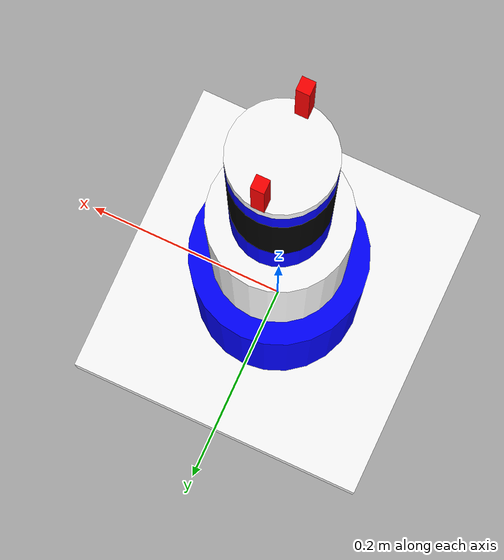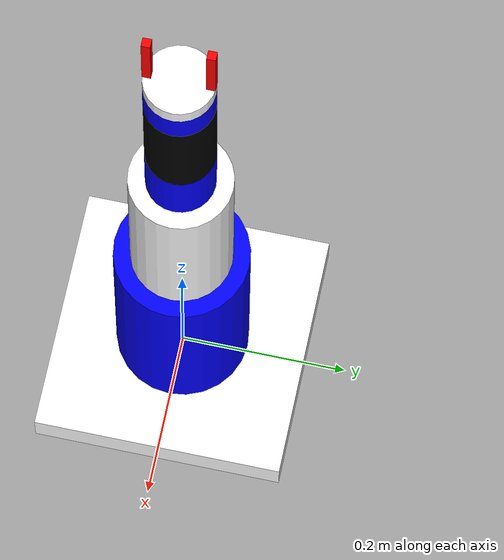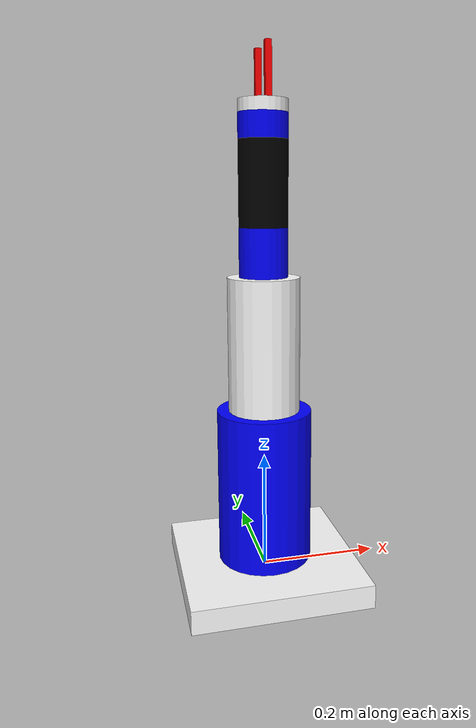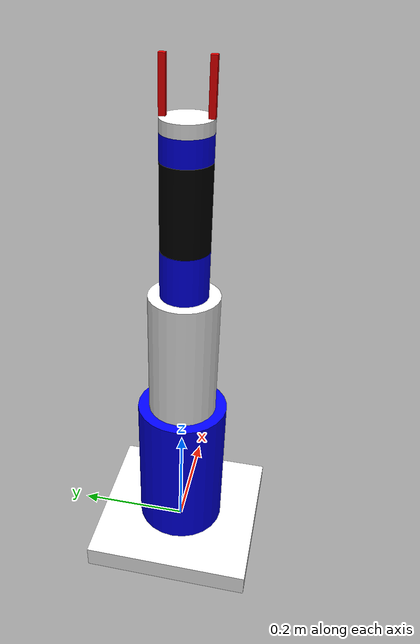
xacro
<?xml version="1.0"?>
<robot name="arm" xmlns:xacro="http://www.ros.org/wiki/xacro">
	<xacro:include filename="/home/zcb/01intelligent_storage/arm/arm.gazebo.xacro"/>
	<material name="White">
		<color rgba="1 1 1 1"/>
	</material>
	<material name="Blue">
		<color rgba="0 0 1 1"/>
	</material>
	<material name="Black">
		<color rgba="0 0 0 1"/>
	</material>
	<material name="Red">
		<color rgba="1 0 0 1"/>
	</material>

	<xacro:property name="base_link_height" value="0.04"/>
	<xacro:property name="base_link_length" value="0.3"/>
	<xacro:property name="base_link_width" value="0.3"/>

	<!-- link1-->
	<xacro:property name="link1_length" value="0.264"/>
	<xacro:property name="link1_radius" value="0.08"/>

	<!-- link2-->
	<xacro:property name="link2_length" value="0.225"/>
	<xacro:property name="link2_radius" value="0.06"/>

	<!-- link3 properties -->
	<xacro:property name="link3_radius" value="0.04"/>
	<xacro:property name="link3_length" value="0.08"/>
	<xacro:property name="link3_mass" value="2"/>

	<!-- link4 properties -->
	<xacro:property name="link4_radius" value="0.04"/>
	<xacro:property name="link4_length" value="0.137"/>
	<xacro:property name="link4_mass" value="2"/>

	<!-- link5 properties -->
	<xacro:property name="link5_radius" value="0.04"/>
	<xacro:property name="link5_length" value="0.04"/>
	<xacro:property name="link5_mass" value="1"/>

	<!-- palm properties -->
	<xacro:property name="palm_radius" value="0.04"/>
	<xacro:property name="palm_length" value="0.02"/>
	<xacro:property name="palm_mass" value="1"/>

	<!-- finger -->
	<xacro:property name="finger_length" value="0.01" />
	<xacro:property name="finger_width" value="0.01" />
	<xacro:property name="finger_height" value="0.08" />
	<xacro:property name="finger_mass" value="0.1"/>

	<!-- cylinder_inertia -->
	<xacro:macro name="cylinder1_inertia" params="mass radius length">
		<inertial>
		    <mass value="${mass}"/>
		    <inertia ixx="${mass*(3*radius*radius+length*length)/12}" ixy="0.0" ixz="0.0" iyy="${mass*(3*radius*radius+length*length)/12}" iyz="0.0" izz="${mass*radius*radius/2}"/>
		</inertial>
	</xacro:macro>
	<xacro:macro name="cylinder2_inertia" params="mass length">
		<inertial>
		    <mass value="${mass}"/>
		    <inertia ixx="${mass*length*length/3}" ixy="0.0" ixz="0.0" iyy="${mass*length*length/3}" iyz="0.0" izz="${mass*length*length/3}"/>
		</inertial>
	</xacro:macro>

	<!-- box_inertia-->
	<xacro:macro name="box_inertia" params="mass width height length">
		<inertial>
			<mass value="${mass}"/>
			<inertia ixx="${mass*(width*width+height*height)/12}" ixy="0.0" ixz="0.0" iyy="${mass*(height*height+length*length)/12}" iyz="0.0" izz="${mass*(width*width+length*length)/12}"/>
		</inertial>
	</xacro:macro>

	<!-- common link-->
	<xacro:macro name="common_link" params="name length radius material type mass">
		<link name="${name}">
			<visual>
				<geometry>
					<cylinder length="${length}" radius="${radius}"/>
				</geometry>
				<origin xyz="0 0 ${length/2}" rpy="0 0 0"/>
				<material name="${material}"/>
			</visual>

			<collision>
				<geometry>
					<cylinder length="${length}" radius="${radius}"/>
				</geometry>
				<origin xyz="0 0 ${length/2}" rpy="0 0 0"/>
			</collision>
			<xacro:if value="${type=='1'}">
				<cylinder1_inertia mass="${mass}" radius="${radius}" length="${length}"/>
			</xacro:if>
			<xacro:unless value="${type=='1'}">
				<cylinder2_inertia mass="${mass}" length="${length}"/>
			</xacro:unless>
		</link>
	</xacro:macro>

	<!-- common joint-->
	<xacro:macro name="common_joint" params="name parent child z axis lower upper">
		<joint name="${name}" type="revolute">
			<parent link="${parent}"/>
			<child link="${child}"/>
			<origin xyz ="0 0 ${z}" rpy ="0 0 0"/>
			<axis xyz="${axis}"/>
			<limit lower="${lower}" upper="${upper}" effort ="30" velocity ="3.49" />
			<dynamics damping="50" friction="1"/>
		</joint>
	</xacro:macro>

<!--/////////////////gazebo world ///////////////////-->
<link name="world"/>

<joint name="fixed" type="fixed">
    <parent link="world"/>
    <child link="base_link"/>
</joint>

	<link name="base_link">
		<visual>
			<geometry>
				<box size="${base_link_length} ${base_link_width} ${base_link_height}"/>
			</geometry>
			<origin xyz="0 0 0" rpy="0 0 0"/>
			<material name="White"/>
		</visual>

		<collision>
			<geometry>
				<box size="0.3 0.3 ${base_link_height}"/>
			</geometry>
			<origin xyz="0 0 0" rpy="0 0 0"/>
		</collision>
		<xacro:box_inertia mass="1" width="${base_link_width}" height="${base_link_height}" length="${base_link_length}"/>
	</link>

	<common_link name="link1" length="${link1_length}" radius="${link1_radius}" material="Blue" type="1" mass="1"/>
	<common_joint name="joint1" parent="base_link" child="link1" z="${base_link_height/2}" axis="0 0 1" lower="${-pi}" upper="${pi}"/>

	<common_link name="link2" length="${link2_length}" radius="${link2_radius}" material="White" type="0" mass="3"/>
	<common_joint name="joint2" parent="link1" child="link2" z="${link1_length}" axis="0 1 0" lower="${-2.00}" upper="${2.00}"/>

	<common_link name="link3" length="${link3_length}" radius="${link3_radius}" material="Blue" type="0" mass="${link3_mass}"/>
	<common_joint name="joint3" parent="link2" child="link3" z="${link2_length}" axis="0 1 0" lower="${-2.27}" upper="${2.27}"/>

	<common_link name="link4" length="${link4_length}" radius="${link4_radius}" material="Black" type="1" mass="${link4_mass}"/>
	<common_joint name="joint4" parent="link3" child="link4" z="${link3_length}" axis="0 0 1" lower="${-pi}" upper="${pi}"/>

	<common_link name="link5" length="${link5_length}" radius="${link5_radius}" material="Blue" type="0" mass="${link5_mass}"/>
	<common_joint name="joint5" parent="link4" child="link5" z="${link4_length}" axis="0 1 0" lower="${-2.87}" upper="${2.87}"/>

	<common_link name="palm" length="${palm_length}" radius="${palm_radius}" material="White" type="1" mass="${palm_mass}"/>
	<common_joint name="palm_joint" parent="link5" child="palm" z="${link5_length}" axis="0 0 1" lower="${-pi}" upper="${pi}"/>

	<link name="left_finger_link">
		<visual>
			<geometry>
				<box size="${finger_length} ${finger_width} ${finger_height}"/>
			</geometry>
			<origin xyz="0 0 ${finger_height/2}" rpy="0 0 0"/>
			<material name="Red"/>
		</visual>

		<collision>
			<geometry>
				<box size="${finger_length} ${finger_width} ${finger_height}"/>
			</geometry>
			<origin xyz="0 0 ${finger_height/2}" rpy="0 0 0"/>
		</collision>
		<xacro:box_inertia mass="${finger_mass}" width="${finger_width}" height="${finger_height}" length="${finger_length}"/>

	</link>

	<joint name="finger_joint1" type="prismatic">
		<parent link="palm"/>
		<child link="left_finger_link"/>
		<origin xyz="0 -${palm_radius-finger_width/2} ${palm_length}" rpy="0 0 0"/>
		<axis xyz="0 1 0"/>
		<limit effort="30" lower="0" upper="${2*(palm_radius-finger_width)}"  velocity="1.0"/>
		<dynamics damping="50" friction="1"/>
	</joint>

	<link name="right_finger_link">
		<visual>
			<geometry>
				<box size="${finger_length} ${finger_width} ${finger_height}"/>
			</geometry>
			<origin xyz="0 0 ${finger_height/2}" rpy="0 0 0"/>
			<material name="Red"/>
		</visual>

		<collision>
			<geometry>
				<box size="${finger_length} ${finger_width} ${finger_height}"/>
			</geometry>
			<origin xyz="0 0 ${finger_height/2}" rpy="0 0 0"/>
		</collision>
		<xacro:box_inertia mass="${finger_mass}" width="${finger_width}" height="${finger_height}" length="${finger_length}"/>

	</link>

	<joint name="finger_joint2" type="fixed">
		<parent link="palm"/>
		<child link="right_finger_link"/>
		<origin xyz="0 ${palm_radius-finger_width/2} ${palm_length}" rpy="0 0 0"/>
	</joint>
</robot>
